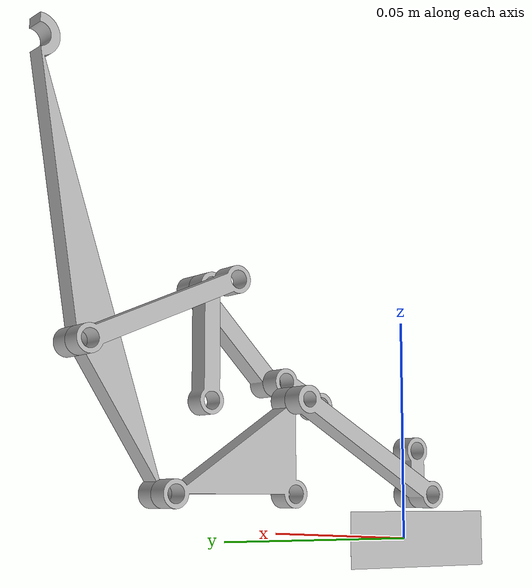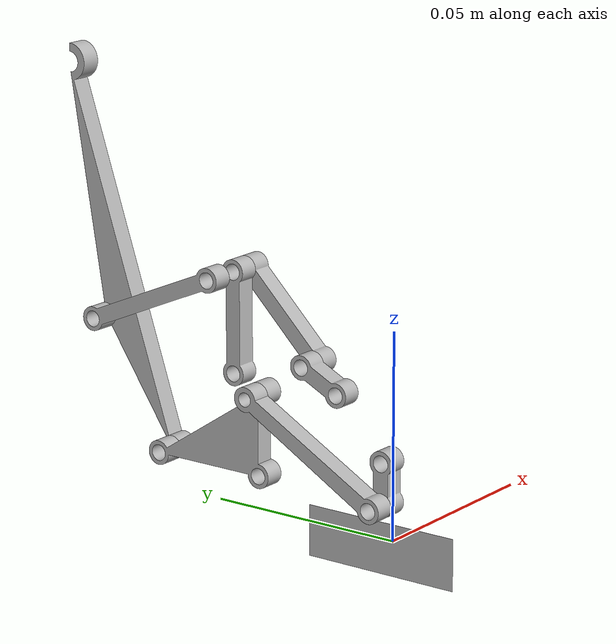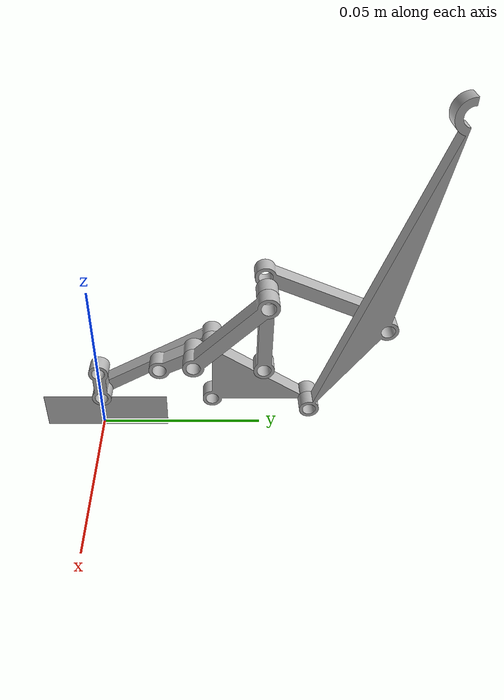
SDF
<?xml version='1.0'?>
<sdf version='1.6'>
  <model name='fast_ver1'>

    <link name="base">
        <gravity>0</gravity>
        <self_collide>1</self_collide>
        <pose>-0.005 0 0 0 0 0</pose>
        <visual name="visual">
            <geometry>
                <box>
                    <size>0.000001 0.04 0.0125</size>
                </box>
            </geometry>
        </visual>
        <collision name='collision'>
            <geometry>
                <box>
                    <size>0.000001 0.04 0.0125</size>
                </box>
            </geometry>
            <surface>
                <friction>
                    <ode>
                        <mu>0.05</mu>
                        <mu2>0.05</mu2>
                    </ode>
                </friction>
            </surface>
        </collision>
    </link>

    <link name="fixed_link">
            <gravity>0</gravity>
        <pose>0 0 0 0 0 0</pose>
    </link>

    <joint name="fixed_to_base" type="fixed">
        <pose>0 0 0 0 0 0</pose>
        <parent>fixed_link</parent>
        <child>base</child>
    </joint>

    <joint name="base_to_power_top" type="revolute">
        <pose>0 0 0.02 0 0 0</pose>
        <parent>base</parent>
        <child>power_top</child>
        <axis>
            <xyz>1 0 0</xyz>
        </axis>
    </joint>

    <joint name="base_to_fixed_top" type="revolute">
        <pose>0 0.04 0.025 0 0 0</pose>
        <parent>fixed_top</parent>
        <child>base</child>
        <axis>
            <xyz>1 0 0</xyz>

        </axis>
    </joint>

    <joint name="base_to_power_bottom" type="revolute">
        <pose>0 0 0.01 0 0 0</pose>
        <parent>power_bottom</parent>
        <child>base</child>
        <axis>
            <xyz>1 0 0</xyz>

        </axis>
    </joint>

    <joint name="base_to_fixed_top" type="revolute">
        <pose>0 0.04 0 0 0 0</pose>
        <parent>fixed_bottom</parent>
        <child>base</child>
        <axis>
            <xyz>1 0 0</xyz>

        </axis>
    </joint>

    <link name="power_top">
        <self_collide>1</self_collide>
        <gravity>0</gravity>
        <visual name="visual">
            <geometry>
                <mesh>
                    <uri>model://fast_ver1/meshes/power_top.dae</uri>
                    <scale>1 1 1</scale>
                </mesh>
            </geometry>
        </visual>
        <collision name='collision'>
            <geometry>
                <mesh>
                    <uri>model://fast_ver1/meshes/power_top.dae</uri>
                    <scale>1 1 1</scale>
                </mesh>
            </geometry>
            <surface>
                <friction>
                    <ode>
                        <mu>0.05</mu>
                        <mu2>0.05</mu2>
                    </ode>
                </friction>
            </surface>

        </collision>
    </link>

    <joint name="power_top_to_connector_top" type="revolute">
        <pose>0 0 0.03 0 0 0</pose>
        <parent>power_top</parent>
        <child>connector_top</child>
        <axis>
            <xyz>1 0 0</xyz>

        </axis>
    </joint>

    <link name="connector_top">
        <self_collide>1</self_collide>
        <gravity>0</gravity>
        <visual name="visual">
            <geometry>
                <mesh>
                    <uri>model://fast_ver1/meshes/connector_top.dae</uri>
                    <scale>1 1 1</scale>
                </mesh>
            </geometry>
        </visual>
        <collision name='collision'>
            <geometry>
                <mesh>
                    <uri>model://fast_ver1/meshes/connector_top.dae</uri>
                    <scale>1 1 1</scale>
                </mesh>
            </geometry>
            <surface>
                <friction>
                    <ode>
                        <mu>0.05</mu>
                        <mu2>0.05</mu2>
                    </ode>
                </friction>
            </surface>
        </collision>
    </link>

    <joint name="connector_top_to_arm" type="revolute">
        <pose>0 0.04 0.05 0 0 0</pose>
        <parent>connector_top</parent>
        <child>connector_arm</child>
        <axis>
            <xyz>1 0 0</xyz>

        </axis>
    </joint>

    <link name="connector_arm">
        <self_collide>1</self_collide>
        <gravity>0</gravity>
        <visual name="visual">
            <geometry>
                <mesh>
                    <uri>model://fast_ver1/meshes/connector_arm.dae</uri>
                    <scale>1 1 1</scale>
                </mesh>
            </geometry>
        </visual>
        <collision name='collision'>
            <geometry>
                <mesh>
                    <uri>model://fast_ver1/meshes/connector_arm.dae</uri>
                    <scale>1 1 1</scale>
                </mesh>
            </geometry>
            <surface>
                <friction>
                    <ode>
                        <mu>0.05</mu>
                        <mu2>0.05</mu2>
                    </ode>
                </friction>
            </surface>
        </collision>
    </link>

   <joint name="connector_top_to_fixed_top" type="revolute">
        <pose>0 0.04 0.05 0 0 0</pose>
        <parent>connector_top</parent>
        <child>fixed_top</child>
        <axis>
            <xyz>1 0 0</xyz>

        </axis>
    </joint>

    <link name="fixed_top">
        <self_collide>1</self_collide>
        <gravity>0</gravity>
        <visual name="visual">
            <geometry>
                <mesh>
                    <uri>model://fast_ver1/meshes/fixed_top.dae</uri>
                    <scale>1 1 1</scale>
                </mesh>
            </geometry>
        </visual>
        <collision name='collision'>
            <geometry>
                <mesh>
                    <uri>model://fast_ver1/meshes/fixed_top.dae</uri>
                    <scale>1 1 1</scale>
                </mesh>
            </geometry>
            <surface>
                <friction>
                    <ode>
                        <mu>0.05</mu>
                        <mu2>0.05</mu2>
                    </ode>
                </friction>
            </surface>
        </collision>
    </link>

    <joint name="connector_arm_to_hanging_arm" type="revolute">
        <pose>0 0.075 0.04 0 0 0</pose>
        <parent>connector_arm</parent>
        <child>hanging_arm</child>
        <axis>
            <xyz>1 0 0</xyz>

        </axis>
    </joint>

    <link name="hanging_arm">
        <self_collide>1</self_collide>
        <gravity>0</gravity>
        <visual name="visual">
            <geometry>
                <mesh>
                    <uri>model://fast_ver1/meshes/hanging_arm.dae</uri>
                    <scale>1 1 1</scale>
                </mesh>
            </geometry>
        </visual>
        <collision name='collision'>
            <geometry>
                <mesh>
                    <uri>model://fast_ver1/meshes/hanging_arm.dae</uri>
                    <scale>1 1 1</scale>
                </mesh>
            </geometry>
            <surface>
                <friction>
                    <ode>
                        <mu>0.05</mu>
                        <mu2>0.05</mu2>
                    </ode>
                </friction>
            </surface>
        </collision>
    </link>

     <joint name="hanging_arm_to_fixed_bottom" type="revolute">
        <pose>0 0.065 0 0 0 0</pose>
        <parent>hanging_arm</parent>
        <child>fixed_bottom</child>
        <axis>
            <xyz>1 0 0</xyz>

        </axis>
    </joint>

    <link name="fixed_bottom">
        <self_collide>1</self_collide>
        <gravity>0</gravity>
        <visual name="visual">
            <geometry>
                <mesh>
                    <uri>model://fast_ver1/meshes/fixed_bottom.dae</uri>
                    <scale>1 1 1</scale>
                </mesh>
            </geometry>
        </visual>
        <collision name='collision'>
            <geometry>
                <mesh>
                    <uri>model://fast_ver1/meshes/fixed_bottom.dae</uri>
                    <scale>1 1 1</scale>
                </mesh>
            </geometry>
            <surface>
                <friction>
                    <ode>
                        <mu>0.05</mu>
                        <mu2>0.05</mu2>
                    </ode>
                </friction>
            </surface>
        </collision>
    </link>

     <joint name="fixed_bottom_to_connector_bottom" type="revolute">
        <pose>0 0.04 0.015 0 0 0</pose>
        <parent>fixed_bottom</parent>
        <child>connector_bottom</child>
        <axis>
            <xyz>1 0 0</xyz>

        </axis>
    </joint>

    <link name="connector_bottom">
        <self_collide>1</self_collide>
        <gravity>0</gravity>
        <visual name="visual">
            <geometry>
                <mesh>
                    <uri>model://fast_ver1/meshes/connector_bottom.dae</uri>
                    <scale>1 1 1</scale>
                </mesh>
            </geometry>
        </visual>
        <collision name='collision'>
            <geometry>
                <mesh>
                    <uri>model://fast_ver1/meshes/connector_bottom.dae</uri>
                    <scale>1 1 1</scale>
                </mesh>
            </geometry>
            <surface>
                <friction>
                    <ode>
                        <mu>0.05</mu>
                        <mu2>0.05</mu2>
                    </ode>
                </friction>
            </surface>
        </collision>
    </link>

     <joint name="connector_bottom_to_power_bottom" type="revolute">
        <pose>0 0 0 0 0 0</pose>
        <parent>connector_bottom</parent>
        <child>power_bottom</child>
        <axis>
            <xyz>1 0 0</xyz>

        </axis>
    </joint>

    <link name="power_bottom">
        <self_collide>1</self_collide>
        <gravity>0</gravity>
        <visual name="visual">
            <geometry>
                <mesh>
                    <uri>model://fast_ver1/meshes/power_bottom.dae</uri>
                    <scale>1 1 1</scale>
                </mesh>
            </geometry>
        </visual>
        <collision name='collision'>
            <geometry>
                <mesh>
                    <uri>model://fast_ver1/meshes/power_bottom.dae</uri>
                    <scale>1 1 1</scale>
                </mesh>
            </geometry>
            <surface>
                <friction>
                    <ode>
                        <mu>0.05</mu>
                        <mu2>0.05</mu2>
                    </ode>
                </friction>
            </surface>
        </collision>
    </link>

  </model>
</sdf>
